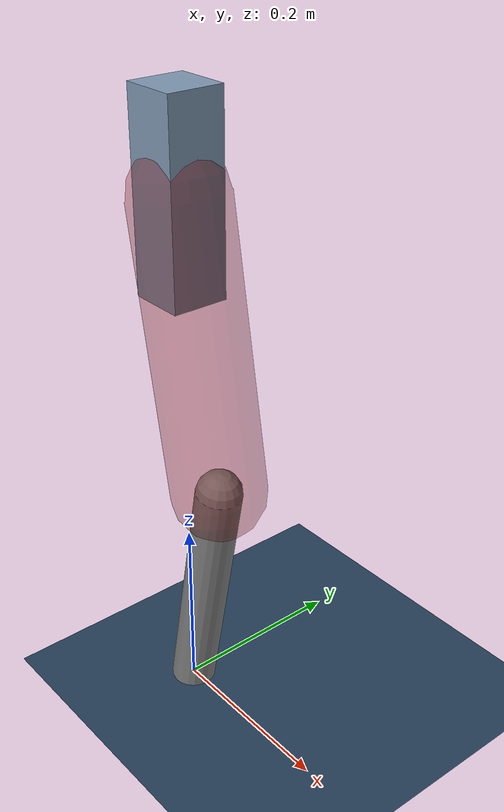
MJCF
<mujoco model="Hopper2D">
	<compiler inertiafromgeom="true" angle="radian" />
	<option timestep="0.001" integrator="implicit" cone="elliptic" solver="Newton" tolerance="1e-10" />

	<default>
		<geom contype="1" conaffinity="1" condim="3" friction="2 0.005 0.0001" solref="0.005 1" />
		<joint limited="true" damping="0.1" />
	</default>

	<asset>
		<texture name="skybox" type="skybox" builtin="gradient" rgb1=".4 .6 .8" rgb2="0 0 0" width="800" height="800" />
		<texture name="grid" type="2d" builtin="checker" rgb1=".1 .2 .3" rgb2=".2 .3 .4" width="300" height="300" mark="edge" markrgb=".2 .3 .4" />
		<material name="ground" texture="grid" texrepeat="1 1" texuniform="true" reflectance="0.1" />
		<material name="leg" rgba="0.5 0.6 0.7 1" />
	</asset>

	<worldbody>

		<geom name="floor" type="plane" size="5 5 0.25" material="ground" />

		<light directional="false" diffuse="0.8 0.8 0.8" specular="0.3 0.3 0.3" pos="0 0 2" dir="0 0 -1" />
		<light mode="targetbodycom" target="base" directional="false" diffuse="0.8 0.8 0.8" specular="0.3 0.3 0.3" pos="0 0 2" dir="0 0 -1" />

		<camera name="fixed" pos="0 -2 1" xyaxes="1 0 0 0 0 1" />
		<camera name="tracking" mode="trackcom" pos="0 -3 1" />

		<body name="root" pos="0 0 0.5772216893081789">
			<joint name="slide_x" type="slide" axis="1 0 0" range="-100 100" />
			<joint name="slide_z" type="slide" axis="0 0 1" range="0 10" />

			<body name="base" pos="0 0 0">
				<geom name="torso" type="box" size="0.03 0.03 0.1" mass="4.049" material="leg" />

				<body name="link1" pos="0 0 0" euler="0 1.3907990773210694 0">
					<joint type="hinge" axis="0 -1 0" pos="0 0 0" name="hinge1" limited="true" range="-3.14 3.14" stiffness="0" damping="0.1" />
					<geom name="thigh" type="capsule" fromto="0 0 0 0.30127142368385085 0 0" size="0.05" rgba="0.5 0 0 0.3" mass="0.9921328439463972" />

					<body name="link2" pos="0.30127142368385085 0 0" euler="0 0.3697530567863774 0">
						<joint type="hinge" axis="0 -1 0" pos="0 0 0" name="hinge2" limited="true" range="-3.14 3.14" stiffness="0" damping="0.1" />
						<geom name="shank" type="capsule" fromto="0 0 0 0.285950265624328 0 0" size="0.025" mass="0.4719602124994624" />

					</body>
				</body>
			</body>
		</body>
	</worldbody>

	<actuator>
		<motor name="torque1" joint="hinge1" ctrlrange="-85.25085419701674 85.25085419701674" ctrllimited="true" gear="1" />
		<motor name="torque2" joint="hinge2" ctrlrange="-272.6463746919367 272.6463746919367" ctrllimited="true" gear="1" />
	</actuator>
</mujoco>
